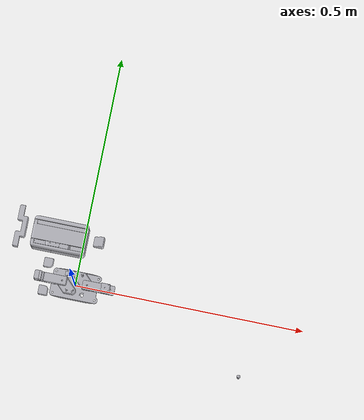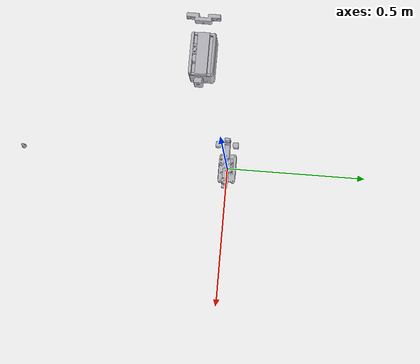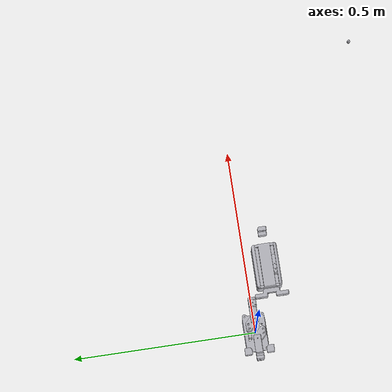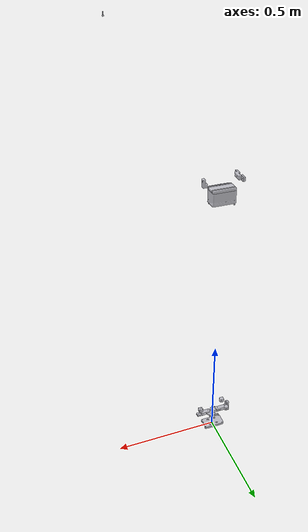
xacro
<?xml version="1.0" ?>
<robot name="gripkit_cr_plus_l_ad" xmlns:xacro="http://www.ros.org/wiki/xacro">

<xacro:include filename="$(find gripkit_cr_plus_l_ad_description)/urdf/gripkit_cr_plus_l_ad.trans" />
<xacro:include filename="$(find gripkit_cr_plus_l_ad_description)/urdf/gripkit_cr_plus_l_ad.gazebo" />

<xacro:property name="max_velocity" value="10"/>
<xacro:property name="max_effort" value="100"/>

<link name="SF-ISO50-CRG200_Customer">
  <inertial>
    <origin xyz="-0.000839387245317249 1.3268462236734284e-07 0.0056277999249054874" rpy="0 0 0"/>
    <mass value="0.16831092346442011"/>
    <inertia ixx="5.7e-05" iyy="0.000144" izz="0.000197" ixy="-0.0" iyz="0.0" ixz="1e-06"/>
  </inertial>
  <visual>
    <origin xyz="0 0 0" rpy="0 0 0"/>
    <geometry>
      <mesh filename="package://gripkit_cr_plus_l_ad_description/meshes/SF-ISO50-CRG200_Customer.stl" scale="0.001 0.001 0.001"/>
    </geometry>
    <material name="silver"/>
  </visual>
  <collision>
    <origin xyz="0 0 0" rpy="0 0 0"/>
    <geometry>
      <mesh filename="package://gripkit_cr_plus_l_ad_description/meshes/SF-ISO50-CRG200_Customer.stl" scale="0.001 0.001 0.001"/>
    </geometry>
  </collision>
</link>

<link name="CRG200_body">
  <inertial>
    <origin xyz="-0.046013419522296255 0.023500046460400374 0.029719376870480135" rpy="0 0 0"/>
    <mass value="1.024019455093708"/>
    <inertia ixx="0.000598" iyy="0.001224" izz="0.001229" ixy="0.0" iyz="-0.0" ixz="-0.0"/>
  </inertial>
  <visual>
    <origin xyz="-0.046 0.0235 -0.011" rpy="0 0 0"/>
    <geometry>
      <mesh filename="package://gripkit_cr_plus_l_ad_description/meshes/CRG200_body.stl" scale="0.001 0.001 0.001"/>
    </geometry>
    <material name="silver"/>
  </visual>
  <collision>
    <origin xyz="-0.046 0.0235 -0.011" rpy="0 0 0"/>
    <geometry>
      <mesh filename="package://gripkit_cr_plus_l_ad_description/meshes/CRG200_body.stl" scale="0.001 0.001 0.001"/>
    </geometry>
  </collision>
</link>

<link name="CRG200_base_jaw_1">
  <inertial>
    <origin xyz="-0.001116596745818358 -2.0816681711721685e-17 0.004896836508835337" rpy="0 0 0"/>
    <mass value="0.028974809674202275"/>
    <inertia ixx="0.0" iyy="5e-06" izz="5e-06" ixy="0.0" iyz="0.0" ixz="0.0"/>
  </inertial>
  <visual>
    <origin xyz="-0.0 0.0185 -0.0686" rpy="0 0 0"/>
    <geometry>
      <mesh filename="package://gripkit_cr_plus_l_ad_description/meshes/CRG200_base_jaw_1.stl" scale="0.001 0.001 0.001"/>
    </geometry>
    <material name="silver"/>
  </visual>
  <collision>
    <origin xyz="-0.0 0.0185 -0.0686" rpy="0 0 0"/>
    <geometry>
      <mesh filename="package://gripkit_cr_plus_l_ad_description/meshes/CRG200_base_jaw_1.stl" scale="0.001 0.001 0.001"/>
    </geometry>
  </collision>
</link>

<link name="CRG200_base_jaw_2">
  <inertial>
    <origin xyz="0.001116596745818374 1.0408340855860843e-17 0.004896836508835337" rpy="0 0 0"/>
    <mass value="0.028974809674202275"/>
    <inertia ixx="0.0" iyy="5e-06" izz="5e-06" ixy="0.0" iyz="-0.0" ixz="-0.0"/>
  </inertial>
  <visual>
    <origin xyz="-0.0 -0.0185 -0.0686" rpy="0 0 0"/>
    <geometry>
      <mesh filename="package://gripkit_cr_plus_l_ad_description/meshes/CRG200_base_jaw_2.stl" scale="0.001 0.001 0.001"/>
    </geometry>
    <material name="silver"/>
  </visual>
  <collision>
    <origin xyz="-0.0 -0.0185 -0.0686" rpy="0 0 0"/>
    <geometry>
      <mesh filename="package://gripkit_cr_plus_l_ad_description/meshes/CRG200_base_jaw_2.stl" scale="0.001 0.001 0.001"/>
    </geometry>
  </collision>
</link>

<link name="CRG200_top_cover">
  <inertial>
    <origin xyz="-2.837104009083995e-09 7.283818491274739e-09 0.0040439255937821245" rpy="0 0 0"/>
    <mass value="0.117790703444327"/>
    <inertia ixx="3.5e-05" iyy="0.000112" izz="0.000144" ixy="-0.0" iyz="-0.0" ixz="0.0"/>
  </inertial>
  <visual>
    <origin xyz="-0.0 0.0 -0.0711" rpy="0 0 0"/>
    <geometry>
      <mesh filename="package://gripkit_cr_plus_l_ad_description/meshes/CRG200_top_cover.stl" scale="0.001 0.001 0.001"/>
    </geometry>
    <material name="silver"/>
  </visual>
  <collision>
    <origin xyz="-0.0 0.0 -0.0711" rpy="0 0 0"/>
    <geometry>
      <mesh filename="package://gripkit_cr_plus_l_ad_description/meshes/CRG200_top_cover.stl" scale="0.001 0.001 0.001"/>
    </geometry>
  </collision>
</link>

<link name="ISO_4762_-_M4_x_12ISO_1">
  <inertial>
    <origin xyz="-6.938893903907228e-18 4.0060663120122797e-13 0.0022480078452116357" rpy="0 0 0"/>
    <mass value="0.002203374250243251"/>
    <inertia ixx="0.0" iyy="0.0" izz="0.0" ixy="0.0" iyz="0.0" ixz="0.0"/>
  </inertial>
  <visual>
    <origin xyz="0.046 0.0235 -0.0065" rpy="0 0 0"/>
    <geometry>
      <mesh filename="package://gripkit_cr_plus_l_ad_description/meshes/ISO_4762_-_M4_x_12ISO_1.stl" scale="0.001 0.001 0.001"/>
    </geometry>
    <material name="silver"/>
  </visual>
  <collision>
    <origin xyz="0.046 0.0235 -0.0065" rpy="0 0 0"/>
    <geometry>
      <mesh filename="package://gripkit_cr_plus_l_ad_description/meshes/ISO_4762_-_M4_x_12ISO_1.stl" scale="0.001 0.001 0.001"/>
    </geometry>
  </collision>
</link>

<link name="ISO_4762_-_M4_x_12ISO_2">
  <inertial>
    <origin xyz="6.938893903907228e-18 4.0060663120122797e-13 0.0022480078452116357" rpy="0 0 0"/>
    <mass value="0.002203374250243251"/>
    <inertia ixx="0.0" iyy="0.0" izz="0.0" ixy="-0.0" iyz="0.0" ixz="-0.0"/>
  </inertial>
  <visual>
    <origin xyz="-0.046 0.0235 -0.0065" rpy="0 0 0"/>
    <geometry>
      <mesh filename="package://gripkit_cr_plus_l_ad_description/meshes/ISO_4762_-_M4_x_12ISO_2.stl" scale="0.001 0.001 0.001"/>
    </geometry>
    <material name="silver"/>
  </visual>
  <collision>
    <origin xyz="-0.046 0.0235 -0.0065" rpy="0 0 0"/>
    <geometry>
      <mesh filename="package://gripkit_cr_plus_l_ad_description/meshes/ISO_4762_-_M4_x_12ISO_2.stl" scale="0.001 0.001 0.001"/>
    </geometry>
  </collision>
</link>

<link name="ISO_4762_-_M4_x_12ISO_3">
  <inertial>
    <origin xyz="6.938893903907228e-18 4.006101006481799e-13 0.0022480078452116357" rpy="0 0 0"/>
    <mass value="0.002203374250243251"/>
    <inertia ixx="0.0" iyy="0.0" izz="0.0" ixy="0.0" iyz="0.0" ixz="-0.0"/>
  </inertial>
  <visual>
    <origin xyz="-0.046 -0.0235 -0.0065" rpy="0 0 0"/>
    <geometry>
      <mesh filename="package://gripkit_cr_plus_l_ad_description/meshes/ISO_4762_-_M4_x_12ISO_3.stl" scale="0.001 0.001 0.001"/>
    </geometry>
    <material name="silver"/>
  </visual>
  <collision>
    <origin xyz="-0.046 -0.0235 -0.0065" rpy="0 0 0"/>
    <geometry>
      <mesh filename="package://gripkit_cr_plus_l_ad_description/meshes/ISO_4762_-_M4_x_12ISO_3.stl" scale="0.001 0.001 0.001"/>
    </geometry>
  </collision>
</link>

<link name="ISO_4762_-_M4_x_12ISO_4">
  <inertial>
    <origin xyz="-6.938893903907228e-18 4.006101006481799e-13 0.0022480078452116357" rpy="0 0 0"/>
    <mass value="0.002203374250243251"/>
    <inertia ixx="0.0" iyy="0.0" izz="0.0" ixy="0.0" iyz="0.0" ixz="0.0"/>
  </inertial>
  <visual>
    <origin xyz="0.046 -0.0235 -0.0065" rpy="0 0 0"/>
    <geometry>
      <mesh filename="package://gripkit_cr_plus_l_ad_description/meshes/ISO_4762_-_M4_x_12ISO_4.stl" scale="0.001 0.001 0.001"/>
    </geometry>
    <material name="silver"/>
  </visual>
  <collision>
    <origin xyz="0.046 -0.0235 -0.0065" rpy="0 0 0"/>
    <geometry>
      <mesh filename="package://gripkit_cr_plus_l_ad_description/meshes/ISO_4762_-_M4_x_12ISO_4.stl" scale="0.001 0.001 0.001"/>
    </geometry>
  </collision>
</link>

<link name="BE_20-030_CUSTOMER_v1_1">
  <inertial>
    <origin xyz="0.015485870461580746 -0.010207189127588168 0.00490301880176619" rpy="0 0 0"/>
    <mass value="0.07101056528211638"/>
    <inertia ixx="7e-06" iyy="8e-06" izz="1.4e-05" ixy="4e-06" iyz="0.0" ixz="-0.0"/>
  </inertial>
  <visual>
    <origin xyz="-0.002 -0.0185 -0.081" rpy="0 0 0"/>
    <geometry>
      <mesh filename="package://gripkit_cr_plus_l_ad_description/meshes/BE_20-030_CUSTOMER_v1_1.stl" scale="0.001 0.001 0.001"/>
    </geometry>
    <material name="silver"/>
  </visual>
  <collision>
    <origin xyz="-0.002 -0.0185 -0.081" rpy="0 0 0"/>
    <geometry>
      <mesh filename="package://gripkit_cr_plus_l_ad_description/meshes/BE_20-030_CUSTOMER_v1_1.stl" scale="0.001 0.001 0.001"/>
    </geometry>
  </collision>
</link>

<link name="BE_20-030_CUSTOMER_v1_2">
  <inertial>
    <origin xyz="-0.01548587046158074 0.010207189127588164 0.004903018801766482" rpy="0 0 0"/>
    <mass value="0.07101056528211638"/>
    <inertia ixx="7e-06" iyy="8e-06" izz="1.4e-05" ixy="4e-06" iyz="-0.0" ixz="0.0"/>
  </inertial>
  <visual>
    <origin xyz="0.002 0.0185 -0.081" rpy="0 0 0"/>
    <geometry>
      <mesh filename="package://gripkit_cr_plus_l_ad_description/meshes/BE_20-030_CUSTOMER_v1_2.stl" scale="0.001 0.001 0.001"/>
    </geometry>
    <material name="silver"/>
  </visual>
  <collision>
    <origin xyz="0.002 0.0185 -0.081" rpy="0 0 0"/>
    <geometry>
      <mesh filename="package://gripkit_cr_plus_l_ad_description/meshes/BE_20-030_CUSTOMER_v1_2.stl" scale="0.001 0.001 0.001"/>
    </geometry>
  </collision>
</link>

<link name="FE_20-050_CUSTOMER_v1_1">
  <inertial>
    <origin xyz="-0.024908407665588283 4.2697955629571524e-17 6.768003808842182e-05" rpy="0 0 0"/>
    <mass value="0.11001397809346045"/>
    <inertia ixx="8e-06" iyy="4.5e-05" izz="4.4e-05" ixy="0.0" iyz="0.0" ixz="-7e-06"/>
  </inertial>
  <visual>
    <origin xyz="0.027 -0.0 -0.091" rpy="0 0 0"/>
    <geometry>
      <mesh filename="package://gripkit_cr_plus_l_ad_description/meshes/FE_20-050_CUSTOMER_v1_1.stl" scale="0.001 0.001 0.001"/>
    </geometry>
    <material name="silver"/>
  </visual>
  <collision>
    <origin xyz="0.027 -0.0 -0.091" rpy="0 0 0"/>
    <geometry>
      <mesh filename="package://gripkit_cr_plus_l_ad_description/meshes/FE_20-050_CUSTOMER_v1_1.stl" scale="0.001 0.001 0.001"/>
    </geometry>
  </collision>
</link>

<link name="FE_20-050_CUSTOMER_v1_2">
  <inertial>
    <origin xyz="0.024908407665588283 -3.5973615060177414e-17 6.768003808813039e-05" rpy="0 0 0"/>
    <mass value="0.11001397809346045"/>
    <inertia ixx="8e-06" iyy="4.5e-05" izz="4.4e-05" ixy="0.0" iyz="0.0" ixz="7e-06"/>
  </inertial>
  <visual>
    <origin xyz="-0.027 -0.0 -0.091" rpy="0 0 0"/>
    <geometry>
      <mesh filename="package://gripkit_cr_plus_l_ad_description/meshes/FE_20-050_CUSTOMER_v1_2.stl" scale="0.001 0.001 0.001"/>
    </geometry>
    <material name="silver"/>
  </visual>
  <collision>
    <origin xyz="-0.027 -0.0 -0.091" rpy="0 0 0"/>
    <geometry>
      <mesh filename="package://gripkit_cr_plus_l_ad_description/meshes/FE_20-050_CUSTOMER_v1_2.stl" scale="0.001 0.001 0.001"/>
    </geometry>
  </collision>
</link>

<link name="AC_20-025_CUSTOMER_v1_1">
  <inertial>
    <origin xyz="-0.0019437600342789296 4.9016599869557765e-17 0.014328388306272866" rpy="0 0 0"/>
    <mass value="0.07018824497649055"/>
    <inertia ixx="9e-06" iyy="9e-06" izz="4e-06" ixy="-0.0" iyz="-0.0" ixz="1e-06"/>
  </inertial>
  <visual>
    <origin xyz="0.077 -0.0 -0.091" rpy="0 0 0"/>
    <geometry>
      <mesh filename="package://gripkit_cr_plus_l_ad_description/meshes/AC_20-025_CUSTOMER_v1_1.stl" scale="0.001 0.001 0.001"/>
    </geometry>
    <material name="silver"/>
  </visual>
  <collision>
    <origin xyz="0.077 -0.0 -0.091" rpy="0 0 0"/>
    <geometry>
      <mesh filename="package://gripkit_cr_plus_l_ad_description/meshes/AC_20-025_CUSTOMER_v1_1.stl" scale="0.001 0.001 0.001"/>
    </geometry>
  </collision>
</link>

<link name="AC_20-025_CUSTOMER_v1_2">
  <inertial>
    <origin xyz="0.0019437600342788741 -3.4542467379448414e-18 0.014328388306272866" rpy="0 0 0"/>
    <mass value="0.07018824497649055"/>
    <inertia ixx="9e-06" iyy="9e-06" izz="4e-06" ixy="-0.0" iyz="0.0" ixz="-1e-06"/>
  </inertial>
  <visual>
    <origin xyz="-0.077 0.0 -0.091" rpy="0 0 0"/>
    <geometry>
      <mesh filename="package://gripkit_cr_plus_l_ad_description/meshes/AC_20-025_CUSTOMER_v1_2.stl" scale="0.001 0.001 0.001"/>
    </geometry>
    <material name="silver"/>
  </visual>
  <collision>
    <origin xyz="-0.077 0.0 -0.091" rpy="0 0 0"/>
    <geometry>
      <mesh filename="package://gripkit_cr_plus_l_ad_description/meshes/AC_20-025_CUSTOMER_v1_2.stl" scale="0.001 0.001 0.001"/>
    </geometry>
  </collision>
</link>

<link name="FT_20-UNI_CUSTOMER_v1_1">
  <inertial>
    <origin xyz="-0.009779007136435161 2.232677242265524e-14 6.046606342535732e-05" rpy="0 0 0"/>
    <mass value="0.05314853137521012"/>
    <inertia ixx="3e-06" iyy="3e-06" izz="3e-06" ixy="-0.0" iyz="-0.0" ixz="0.0"/>
  </inertial>
  <visual>
    <origin xyz="-0.077 0.0 -0.116" rpy="0 0 0"/>
    <geometry>
      <mesh filename="package://gripkit_cr_plus_l_ad_description/meshes/FT_20-UNI_CUSTOMER_v1_1.stl" scale="0.001 0.001 0.001"/>
    </geometry>
    <material name="silver"/>
  </visual>
  <collision>
    <origin xyz="-0.077 0.0 -0.116" rpy="0 0 0"/>
    <geometry>
      <mesh filename="package://gripkit_cr_plus_l_ad_description/meshes/FT_20-UNI_CUSTOMER_v1_1.stl" scale="0.001 0.001 0.001"/>
    </geometry>
  </collision>
</link>

<link name="DP_20-005_CUSTOMER_v1">
  <inertial>
    <origin xyz="0.0024999999999999467 4.884362327714104e-17 8.895661984809067e-15" rpy="0 0 0"/>
    <mass value="0.013785256620825458"/>
    <inertia ixx="1e-06" iyy="0.0" izz="0.0" ixy="0.0" iyz="0.0" ixz="-0.0"/>
  </inertial>
  <visual>
    <origin xyz="0.077 -0.0 -0.116" rpy="0 0 0"/>
    <geometry>
      <mesh filename="package://gripkit_cr_plus_l_ad_description/meshes/DP_20-005_CUSTOMER_v1.stl" scale="0.001 0.001 0.001"/>
    </geometry>
    <material name="silver"/>
  </visual>
  <collision>
    <origin xyz="0.077 -0.0 -0.116" rpy="0 0 0"/>
    <geometry>
      <mesh filename="package://gripkit_cr_plus_l_ad_description/meshes/DP_20-005_CUSTOMER_v1.stl" scale="0.001 0.001 0.001"/>
    </geometry>
  </collision>
</link>

<link name="TE_20-060_CUSTOMER_v1">
  <inertial>
    <origin xyz="-0.0008571292023886595 -1.1912076126518881e-14 -6.522560269672795e-16" rpy="0 0 0"/>
    <mass value="0.14167393741313877"/>
    <inertia ixx="7e-05" iyy="9e-06" izz="6.9e-05" ixy="-0.0" iyz="0.0" ixz="0.0"/>
  </inertial>
  <visual>
    <origin xyz="0.072 -0.0 -0.116" rpy="0 0 0"/>
    <geometry>
      <mesh filename="package://gripkit_cr_plus_l_ad_description/meshes/TE_20-060_CUSTOMER_v1.stl" scale="0.001 0.001 0.001"/>
    </geometry>
    <material name="silver"/>
  </visual>
  <collision>
    <origin xyz="0.072 -0.0 -0.116" rpy="0 0 0"/>
    <geometry>
      <mesh filename="package://gripkit_cr_plus_l_ad_description/meshes/TE_20-060_CUSTOMER_v1.stl" scale="0.001 0.001 0.001"/>
    </geometry>
  </collision>
</link>

<link name="FT_20-UNI_CUSTOMER_v1_2">
  <inertial>
    <origin xyz="0.009779007136435106 6.046606342518038e-05 2.1690982343613996e-14" rpy="0 0 0"/>
    <mass value="0.05314853137521012"/>
    <inertia ixx="3e-06" iyy="3e-06" izz="3e-06" ixy="-0.0" iyz="-0.0" ixz="0.0"/>
  </inertial>
  <visual>
    <origin xyz="0.072 -0.03 -0.116" rpy="0 0 0"/>
    <geometry>
      <mesh filename="package://gripkit_cr_plus_l_ad_description/meshes/FT_20-UNI_CUSTOMER_v1_2.stl" scale="0.001 0.001 0.001"/>
    </geometry>
    <material name="silver"/>
  </visual>
  <collision>
    <origin xyz="0.072 -0.03 -0.116" rpy="0 0 0"/>
    <geometry>
      <mesh filename="package://gripkit_cr_plus_l_ad_description/meshes/FT_20-UNI_CUSTOMER_v1_2.stl" scale="0.001 0.001 0.001"/>
    </geometry>
  </collision>
</link>

<link name="FT_20-UNI_CUSTOMER_v1_3">
  <inertial>
    <origin xyz="0.009779007136435092 -6.046606342515262e-05 -2.210731597784843e-14" rpy="0 0 0"/>
    <mass value="0.05314853137521012"/>
    <inertia ixx="3e-06" iyy="3e-06" izz="3e-06" ixy="0.0" iyz="-0.0" ixz="-0.0"/>
  </inertial>
  <visual>
    <origin xyz="0.072 0.03 -0.116" rpy="0 0 0"/>
    <geometry>
      <mesh filename="package://gripkit_cr_plus_l_ad_description/meshes/FT_20-UNI_CUSTOMER_v1_3.stl" scale="0.001 0.001 0.001"/>
    </geometry>
    <material name="silver"/>
  </visual>
  <collision>
    <origin xyz="0.072 0.03 -0.116" rpy="0 0 0"/>
    <geometry>
      <mesh filename="package://gripkit_cr_plus_l_ad_description/meshes/FT_20-UNI_CUSTOMER_v1_3.stl" scale="0.001 0.001 0.001"/>
    </geometry>
  </collision>
</link>

<joint name="Rigid10" type="fixed">
  <origin xyz="0.046 -0.0235 0.011" rpy="0 0 0"/>
  <parent link="SF-ISO50-CRG200_Customer"/>
  <child link="CRG200_body"/>
</joint>

<joint name="Slider01" type="prismatic">
  <origin xyz="-0.046 0.005 0.0576" rpy="0 0 0"/>
  <parent link="CRG200_body"/>
  <child link="CRG200_base_jaw_1"/>
  <axis xyz="1.0 0.0 0.0"/>
  <limit upper="0.021" lower="-0.021" effort="${max_effort}" velocity="${max_velocity}"/>
</joint>

<joint name="Slider02" type="prismatic">
  <origin xyz="-0.046 0.042 0.0576" rpy="0 0 0"/>
  <parent link="CRG200_body"/>
  <child link="CRG200_base_jaw_2"/>
  <axis xyz="1.0 0.0 0.0"/>
  <limit upper="0.021" lower="-0.021" effort="${max_effort}" velocity="${max_velocity}"/>
</joint>

<joint name="Rigid11" type="fixed">
  <origin xyz="-0.046 0.0235 0.0601" rpy="0 0 0"/>
  <parent link="CRG200_body"/>
  <child link="CRG200_top_cover"/>
</joint>

<joint name="Rigid12" type="fixed">
  <origin xyz="-0.046 -0.0235 0.0065" rpy="0 0 0"/>
  <parent link="SF-ISO50-CRG200_Customer"/>
  <child link="ISO_4762_-_M4_x_12ISO_1"/>
</joint>

<joint name="Rigid13" type="fixed">
  <origin xyz="0.046 -0.0235 0.0065" rpy="0 0 0"/>
  <parent link="SF-ISO50-CRG200_Customer"/>
  <child link="ISO_4762_-_M4_x_12ISO_2"/>
</joint>

<joint name="Rigid14" type="fixed">
  <origin xyz="0.046 0.0235 0.0065" rpy="0 0 0"/>
  <parent link="SF-ISO50-CRG200_Customer"/>
  <child link="ISO_4762_-_M4_x_12ISO_3"/>
</joint>

<joint name="Rigid15" type="fixed">
  <origin xyz="-0.046 0.0235 0.0065" rpy="0 0 0"/>
  <parent link="SF-ISO50-CRG200_Customer"/>
  <child link="ISO_4762_-_M4_x_12ISO_4"/>
</joint>

<joint name="Rigid16" type="fixed">
  <origin xyz="0.002 0.0 0.0124" rpy="0 0 0"/>
  <parent link="CRG200_base_jaw_2"/>
  <child link="BE_20-030_CUSTOMER_v1_1"/>
</joint>

<joint name="Rigid17" type="fixed">
  <origin xyz="-0.002 0.0 0.0124" rpy="0 0 0"/>
  <parent link="CRG200_base_jaw_1"/>
  <child link="BE_20-030_CUSTOMER_v1_2"/>
</joint>

<joint name="Rigid18" type="fixed">
  <origin xyz="-0.025 0.0185 0.01" rpy="0 0 0"/>
  <parent link="BE_20-030_CUSTOMER_v1_2"/>
  <child link="FE_20-050_CUSTOMER_v1_1"/>
</joint>

<joint name="Rigid19" type="fixed">
  <origin xyz="0.025 -0.0185 0.01" rpy="0 0 0"/>
  <parent link="BE_20-030_CUSTOMER_v1_1"/>
  <child link="FE_20-050_CUSTOMER_v1_2"/>
</joint>

<joint name="Rigid20" type="fixed">
  <origin xyz="-0.05 0.0 0.0" rpy="0 0 0"/>
  <parent link="FE_20-050_CUSTOMER_v1_1"/>
  <child link="AC_20-025_CUSTOMER_v1_1"/>
</joint>

<joint name="Rigid21" type="fixed">
  <origin xyz="0.05 -0.0 0.0" rpy="0 0 0"/>
  <parent link="FE_20-050_CUSTOMER_v1_2"/>
  <child link="AC_20-025_CUSTOMER_v1_2"/>
</joint>

<joint name="Rigid22" type="fixed">
  <origin xyz="0.0 0.0 0.025" rpy="0 0 0"/>
  <parent link="AC_20-025_CUSTOMER_v1_2"/>
  <child link="FT_20-UNI_CUSTOMER_v1_1"/>
</joint>

<joint name="Rigid23" type="fixed">
  <origin xyz="0.0 0.0 0.025" rpy="0 0 0"/>
  <parent link="AC_20-025_CUSTOMER_v1_1"/>
  <child link="DP_20-005_CUSTOMER_v1"/>
</joint>

<joint name="Rigid24" type="fixed">
  <origin xyz="0.005 0.0 0.0" rpy="0 0 0"/>
  <parent link="DP_20-005_CUSTOMER_v1"/>
  <child link="TE_20-060_CUSTOMER_v1"/>
</joint>

<joint name="Rigid25" type="fixed">
  <origin xyz="0.0 0.03 0.0" rpy="0 0 0"/>
  <parent link="TE_20-060_CUSTOMER_v1"/>
  <child link="FT_20-UNI_CUSTOMER_v1_2"/>
</joint>

<joint name="Rigid26" type="fixed">
  <origin xyz="0.0 -0.03 0.0" rpy="0 0 0"/>
  <parent link="TE_20-060_CUSTOMER_v1"/>
  <child link="FT_20-UNI_CUSTOMER_v1_3"/>
</joint>

</robot>
